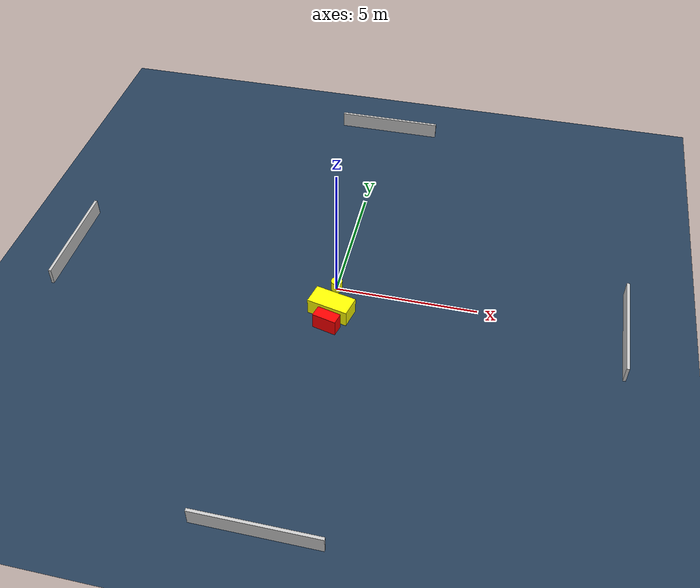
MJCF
<?xml version="1.0" ?>
<mujoco model="generated_environment">
  <option timestep="0.01" integrator="RK4" cone="elliptic"/>
  <default>
    <geom density="1"/>
  </default>
  <asset>
    <texture builtin="gradient" height="3072" name="skybox" rgb1="0.3 0.5 0.7" rgb2="0 0 0" type="skybox" width="512"/>
    <texture builtin="checker" height="300" name="groundplane" rgb1="0.2 0.3 0.4" rgb2="0.1 0.2 0.3" type="2d" width="300"/>
    <material name="groundplane" reflectance="0.2" texrepeat="5 5" texture="groundplane"/>
  </asset>
  <worldbody>
    <light dir="0 0 -1" directional="true" pos="0 0 1.5"/>
    <geom condim="3" friction="0.5 0.005 0.001" material="groundplane" name="floor" pos="0 0 0" size="0 0 0.05" type="plane"/>
    <body name="walls">
      <geom name="wall_1" condim="4" pos="-10.0 0.0 0.3" rgba="0.800000011920929 0.800000011920929 0.800000011920929 1.0" size="0.05 2.0 0.3" type="box"/>
      <geom name="wall_2" condim="4" pos="10.0 0.0 0.3" rgba="0.800000011920929 0.800000011920929 0.800000011920929 1.0" size="0.05 2.0 0.3" type="box"/>
      <geom name="wall_3" condim="4" pos="0.0 -10.0 0.3" rgba="0.800000011920929 0.800000011920929 0.800000011920929 1.0" size="2.0 0.05 0.3" type="box"/>
      <geom name="wall_4" condim="4" pos="0.0 10.0 0.3" rgba="0.800000011920929 0.800000011920929 0.800000011920929 1.0" size="2.0 0.05 0.3" type="box"/>
    </body>
    <body name="robot">
      <joint name="joint_x" type="slide" pos="0 0 0" axis="1 0 0"/>
      <joint name="joint_y" type="slide" pos="0 0 0" axis="0 1 0"/>
      <geom name="robot" type="cylinder" pos="0.0 0.0 0.2" size="0.2 0.2 0.0" mass="5.0" friction="1.0 0.005 0.0001" condim="4" rgba="1.0 1.0 0.0 1.0"/>
    </body>
    <body name="obstacle_1_movable">
      <geom name="obstacle_1_movable" condim="4" pos="0.07512796164987534 -1.134110586607264 0.3" euler="0 0 167.13168478337835" friction="0.0 0.005 0.001" rgba="1.0 1.0 0.0 1.0" size="0.7361166728109754 0.38201000469093227 0.3" type="box" mass="0.1"/>
      <joint type="free"/>
    </body>
    <body name="obstacle_2_static">
      <geom name="obstacle_2_static" condim="4" pos="0.07294095473970523 -1.8611605493848493 0.3" euler="0 0 345.74388151934494" friction="0.0 0.005 0.001" rgba="1.0 0.0 0.0 1.0" size="0.42581296499675403 0.212148449059065 0.3" type="box"/>
    </body>
  </worldbody>
  <actuator>
    <motor name="actuator_x" joint="joint_x" gear="1" ctrlrange="-1 1"/>
    <motor name="actuator_y" joint="joint_y" gear="1" ctrlrange="-1 1"/>
  </actuator>
</mujoco>
